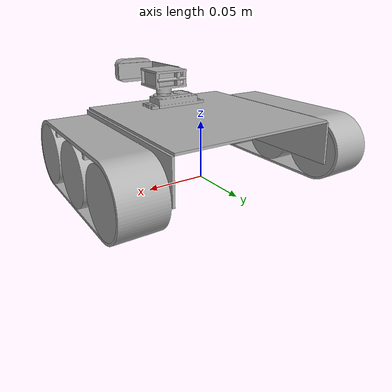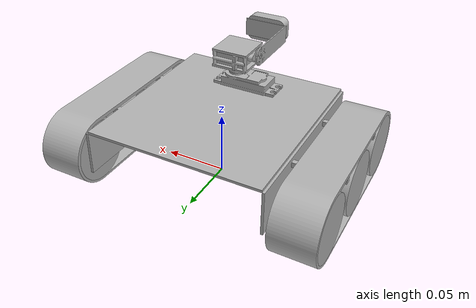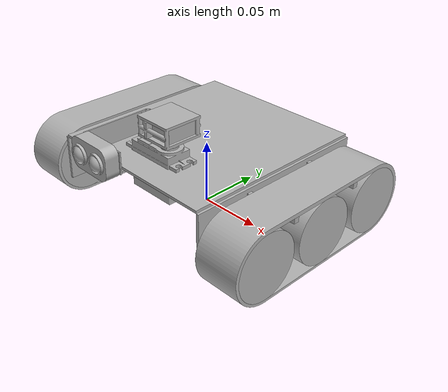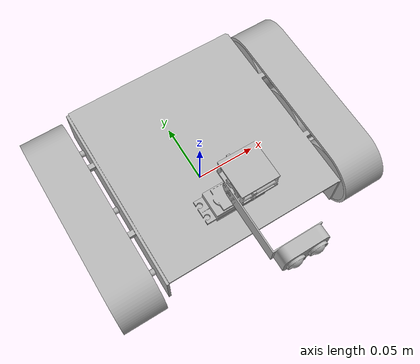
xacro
<?xml version="1.0" ?>
<robot name="slam_robot" xmlns:xacro="http://www.ros.org/wiki/xacro">

<xacro:include filename="$(find slam_robot)/model/materials.xacro" />
<xacro:include filename="$(find slam_robot)/model/slam_robot.trans" />
<xacro:include filename="$(find slam_robot)/model/slam_robot.gazebo" />
<link name="base_link">
  <inertial>
    <origin xyz="-5.540461309722684e-12 0.001115430842048378 0.04947878098697647" rpy="0 0 0"/>
    <mass value="0.5067100319115941"/>
    <inertia ixx="0.000985" iyy="0.001623" izz="0.002495" ixy="-0.0" iyz="-4e-06" ixz="0.0"/>
  </inertial>
  <visual>
    <origin xyz="0 0 0" rpy="0 0 0"/>
    <geometry>
      <mesh filename="file://$(find slam_robot)/meshes/base_link.stl" scale="0.001 0.001 0.001"/>
    </geometry>
    <material name="silver"/>
  </visual>
  <collision>
    <origin xyz="0 0 0" rpy="0 0 0"/>
    <geometry>
      <mesh filename="file://$(find slam_robot)/meshes/base_link.stl" scale="0.001 0.001 0.001"/>
    </geometry>
  </collision>
</link>

<link name="LeftMotor_1">
  <inertial>
    <origin xyz="-0.017499999999999988 8.195639375485619e-10 3.5762788563875603e-10" rpy="0 0 0"/>
    <mass value="0.5394703634836222"/>
    <inertia ixx="0.000169" iyy="0.000139" izz="0.000139" ixy="-0.0" iyz="0.0" ixz="0.0"/>
  </inertial>
  <visual>
    <origin xyz="0.077 -0.055 -0.02701" rpy="0 0 0"/>
    <geometry>
      <mesh filename="file://$(find slam_robot)/meshes/LeftMotor.stl" scale="0.001 0.001 0.001"/>
    </geometry>
    <material name="silver"/>
  </visual>
  <collision>
    <origin xyz="0.077 -0.055 -0.02701" rpy="0 0 0"/>
    <geometry>
      <mesh filename="file://$(find slam_robot)/meshes/LeftMotor.stl" scale="0.001 0.001 0.001"/>
    </geometry>
  </collision>
</link>

<link name="RightMotor_1">
  <inertial>
    <origin xyz="0.017499999999999988 8.195639375485619e-10 3.5762788563875603e-10" rpy="0 0 0"/>
    <mass value="0.5394703634836222"/>
    <inertia ixx="0.000169" iyy="0.000139" izz="0.000139" ixy="0.0" iyz="0.0" ixz="-0.0"/>
  </inertial>
  <visual>
    <origin xyz="-0.077 -0.055 -0.02701" rpy="0 0 0"/>
    <geometry>
      <mesh filename="file://$(find slam_robot)/meshes/RightMotor.stl" scale="0.001 0.001 0.001"/>
    </geometry>
    <material name="silver"/>
  </visual>
  <collision>
    <origin xyz="-0.077 -0.055 -0.02701" rpy="0 0 0"/>
    <geometry>
      <mesh filename="file://$(find slam_robot)/meshes/RightMotor.stl" scale="0.001 0.001 0.001"/>
    </geometry>
  </collision>
</link>

<link name="LeftMiddleWheel_1">
  <inertial>
    <origin xyz="-0.017499999999999988 5.1236508803943863e-17 2.533197436538348e-10" rpy="0 0 0"/>
    <mass value="0.5394703634836222"/>
    <inertia ixx="0.000169" iyy="0.000139" izz="0.000139" ixy="0.0" iyz="-0.0" ixz="0.0"/>
  </inertial>
  <visual>
    <origin xyz="0.077 -0.0 -0.02701" rpy="0 0 0"/>
    <geometry>
      <mesh filename="file://$(find slam_robot)/meshes/LeftMiddleWheel.stl" scale="0.001 0.001 0.001"/>
    </geometry>
    <material name="silver"/>
  </visual>
  <collision>
    <origin xyz="0.077 -0.0 -0.02701" rpy="0 0 0"/>
    <geometry>
      <mesh filename="file://$(find slam_robot)/meshes/LeftMiddleWheel.stl" scale="0.001 0.001 0.001"/>
    </geometry>
  </collision>
</link>

<link name="LeftFrontWheel_1">
  <inertial>
    <origin xyz="-0.017499999999999988 -8.195638750985168e-10 3.278255514271855e-10" rpy="0 0 0"/>
    <mass value="0.5394703634836222"/>
    <inertia ixx="0.000169" iyy="0.000139" izz="0.000139" ixy="-0.0" iyz="-0.0" ixz="0.0"/>
  </inertial>
  <visual>
    <origin xyz="0.077 0.055 -0.027" rpy="0 0 0"/>
    <geometry>
      <mesh filename="file://$(find slam_robot)/meshes/LeftFrontWheel.stl" scale="0.001 0.001 0.001"/>
    </geometry>
    <material name="silver"/>
  </visual>
  <collision>
    <origin xyz="0.077 0.055 -0.027" rpy="0 0 0"/>
    <geometry>
      <mesh filename="file://$(find slam_robot)/meshes/LeftFrontWheel.stl" scale="0.001 0.001 0.001"/>
    </geometry>
  </collision>
</link>

<link name="RightMiddleWheel_1">
  <inertial>
    <origin xyz="0.017499999999999988 5.1236508803943863e-17 2.533197436538348e-10" rpy="0 0 0"/>
    <mass value="0.5394703634836222"/>
    <inertia ixx="0.000169" iyy="0.000139" izz="0.000139" ixy="-0.0" iyz="-0.0" ixz="-0.0"/>
  </inertial>
  <visual>
    <origin xyz="-0.077 -0.0 -0.02701" rpy="0 0 0"/>
    <geometry>
      <mesh filename="file://$(find slam_robot)/meshes/RightMiddleWheel.stl" scale="0.001 0.001 0.001"/>
    </geometry>
    <material name="silver"/>
  </visual>
  <collision>
    <origin xyz="-0.077 -0.0 -0.02701" rpy="0 0 0"/>
    <geometry>
      <mesh filename="file://$(find slam_robot)/meshes/RightMiddleWheel.stl" scale="0.001 0.001 0.001"/>
    </geometry>
  </collision>
</link>

<link name="RightFrontWheel_1">
  <inertial>
    <origin xyz="0.017499999999999988 -8.195638750985168e-10 3.278255514271855e-10" rpy="0 0 0"/>
    <mass value="0.5394703634836222"/>
    <inertia ixx="0.000169" iyy="0.000139" izz="0.000139" ixy="-0.0" iyz="-0.0" ixz="-0.0"/>
  </inertial>
  <visual>
    <origin xyz="-0.077 0.055 -0.027" rpy="0 0 0"/>
    <geometry>
      <mesh filename="file://$(find slam_robot)/meshes/RightFrontWheel.stl" scale="0.001 0.001 0.001"/>
    </geometry>
    <material name="silver"/>
  </visual>
  <collision>
    <origin xyz="-0.077 0.055 -0.027" rpy="0 0 0"/>
    <geometry>
      <mesh filename="file://$(find slam_robot)/meshes/RightFrontWheel.stl" scale="0.001 0.001 0.001"/>
    </geometry>
  </collision>
</link>

<link name="TrackbeltLeft_1">
  <inertial>
    <origin xyz="-0.002500000000000016 -0.030000003577986583 -0.020599598130945508" rpy="0 0 0"/>
    <mass value="0.26401640653239344"/>
    <inertia ixx="0.000879" iyy="0.000166" izz="0.000768" ixy="-0.0" iyz="-0.0" ixz="-0.0"/>
  </inertial>
  <visual>
    <origin xyz="0.092 -0.03 -0.052" rpy="0 0 0"/>
    <geometry>
      <mesh filename="file://$(find slam_robot)/meshes/TrackbeltLeft.stl" scale="0.001 0.001 0.001"/>
    </geometry>
    <material name="silver"/>
  </visual>
  <collision>
    <origin xyz="0.092 -0.03 -0.052" rpy="0 0 0"/>
    <geometry>
      <mesh filename="file://$(find slam_robot)/meshes/TrackbeltLeft.stl" scale="0.001 0.001 0.001"/>
    </geometry>
  </collision>
</link>

<link name="TrackbeltRight_1">
  <inertial>
    <origin xyz="0.0024999999999999883 -0.030000003577986583 -0.020599598130945508" rpy="0 0 0"/>
    <mass value="0.26401640653239344"/>
    <inertia ixx="0.000879" iyy="0.000166" izz="0.000768" ixy="-0.0" iyz="-0.0" ixz="-0.0"/>
  </inertial>
  <visual>
    <origin xyz="-0.092 -0.03 -0.052" rpy="0 0 0"/>
    <geometry>
      <mesh filename="file://$(find slam_robot)/meshes/TrackbeltRight.stl" scale="0.001 0.001 0.001"/>
    </geometry>
    <material name="silver"/>
  </visual>
  <collision>
    <origin xyz="-0.092 -0.03 -0.052" rpy="0 0 0"/>
    <geometry>
      <mesh filename="file://$(find slam_robot)/meshes/TrackbeltRight.stl" scale="0.001 0.001 0.001"/>
    </geometry>
  </collision>
</link>

<link name="MG995_1">
  <inertial>
    <origin xyz="0.00018178353418634105 -0.010000003571498828 -0.008052466740676903" rpy="0 0 0"/>
    <mass value="0.24596364280532737"/>
    <inertia ixx="3.9e-05" iyy="6.5e-05" izz="4.2e-05" ixy="-0.0" iyz="0.0" ixz="-1e-06"/>
  </inertial>
  <visual>
    <origin xyz="-0.0 0.035 -0.056" rpy="0 0 0"/>
    <geometry>
      <mesh filename="file://$(find slam_robot)/meshes/MG995.stl" scale="0.001 0.001 0.001"/>
    </geometry>
    <material name="silver"/>
  </visual>
  <collision>
    <origin xyz="-0.0 0.035 -0.056" rpy="0 0 0"/>
    <geometry>
      <mesh filename="file://$(find slam_robot)/meshes/MG995.stl" scale="0.001 0.001 0.001"/>
    </geometry>
  </collision>
</link>

<link name="PanPart_1">
  <inertial>
    <origin xyz="7.735593309538685e-07 3.372936091554368e-05 0.006081173443687346" rpy="0 0 0"/>
    <mass value="0.0397277316921417"/>
    <inertia ixx="5e-06" iyy="5e-06" izz="6e-06" ixy="-0.0" iyz="-0.0" ixz="-0.0"/>
  </inertial>
  <visual>
    <origin xyz="-0.0101 0.045 -0.0731" rpy="0 0 0"/>
    <geometry>
      <mesh filename="file://$(find slam_robot)/meshes/PanPart.stl" scale="0.001 0.001 0.001"/>
    </geometry>
    <material name="silver"/>
  </visual>
  <collision>
    <origin xyz="-0.0101 0.045 -0.0731" rpy="0 0 0"/>
    <geometry>
      <mesh filename="file://$(find slam_robot)/meshes/PanPart.stl" scale="0.001 0.001 0.001"/>
    </geometry>
  </collision>
</link>

<link name="MG90S_1">
  <inertial>
    <origin xyz="-0.0012642844142995557 -0.0003546384959452545 -0.005750000639991565" rpy="0 0 0"/>
    <mass value="0.05582570440066095"/>
    <inertia ixx="3e-06" iyy="4e-06" izz="6e-06" ixy="-0.0" iyz="-0.0" ixz="-0.0"/>
  </inertial>
  <visual>
    <origin xyz="-0.0101 0.045 -0.0866" rpy="0 0 0"/>
    <geometry>
      <mesh filename="file://$(find slam_robot)/meshes/MG90S.stl" scale="0.001 0.001 0.001"/>
    </geometry>
    <material name="silver"/>
  </visual>
  <collision>
    <origin xyz="-0.0101 0.045 -0.0866" rpy="0 0 0"/>
    <geometry>
      <mesh filename="file://$(find slam_robot)/meshes/MG90S.stl" scale="0.001 0.001 0.001"/>
    </geometry>
  </collision>
</link>

<link name="TiltPart_1">
  <inertial>
    <origin xyz="0.008128464556555534 -0.03307294922540953 -5.502122614162164e-05" rpy="0 0 0"/>
    <mass value="0.011206517805852722"/>
    <inertia ixx="4e-06" iyy="2e-06" izz="5e-06" ixy="1e-06" iyz="-0.0" ixz="0.0"/>
  </inertial>
  <visual>
    <origin xyz="0.0094 0.05075 -0.08085" rpy="0 0 0"/>
    <geometry>
      <mesh filename="file://$(find slam_robot)/meshes/TiltPart.stl" scale="0.001 0.001 0.001"/>
    </geometry>
    <material name="silver"/>
  </visual>
  <collision>
    <origin xyz="0.0094 0.05075 -0.08085" rpy="0 0 0"/>
    <geometry>
      <mesh filename="file://$(find slam_robot)/meshes/TiltPart.stl" scale="0.001 0.001 0.001"/>
    </geometry>
  </collision>
</link>

<link name="TFLunaBenewake_1">
  <inertial>
    <origin xyz="2.2363283794235578e-10 -0.005554543875903067 -1.4306298670718753e-07" rpy="0 0 0"/>
    <mass value="0.0635660946231804"/>
    <inertia ixx="3e-06" iyy="8e-06" izz="7e-06" ixy="0.0" iyz="0.0" ixz="-0.0"/>
  </inertial>
  <visual>
    <origin xyz="-0.0096 0.10075 -0.080778" rpy="0 0 0"/>
    <geometry>
      <mesh filename="file://$(find slam_robot)/meshes/TFLunaBenewake.stl" scale="0.001 0.001 0.001"/>
    </geometry>
    <material name="silver"/>
  </visual>
  <collision>
    <origin xyz="-0.0096 0.10075 -0.080778" rpy="0 0 0"/>
    <geometry>
      <mesh filename="file://$(find slam_robot)/meshes/TFLunaBenewake.stl" scale="0.001 0.001 0.001"/>
    </geometry>
  </collision>
</link>

<joint name="Umdrehung 1" type="continuous">
  <origin xyz="-0.077 0.055 0.02701" rpy="0 0 0"/>
  <parent link="base_link"/>
  <child link="LeftMotor_1"/>
  <axis xyz="-1.0 0.0 0.0"/>
</joint>

<joint name="Umdrehung 2" type="continuous">
  <origin xyz="0.077 0.055 0.02701" rpy="0 0 0"/>
  <parent link="base_link"/>
  <child link="RightMotor_1"/>
  <axis xyz="-1.0 0.0 0.0"/>
</joint>

<joint name="Starr 3" type="fixed">
  <origin xyz="-0.077 0.0 0.02701" rpy="0 0 0"/>
  <parent link="base_link"/>
  <child link="LeftMiddleWheel_1"/>
</joint>

<joint name="Starr 4" type="fixed">
  <origin xyz="-0.077 -0.055 0.027" rpy="0 0 0"/>
  <parent link="base_link"/>
  <child link="LeftFrontWheel_1"/>
</joint>

<joint name="Starr 5" type="fixed">
  <origin xyz="0.077 0.0 0.02701" rpy="0 0 0"/>
  <parent link="base_link"/>
  <child link="RightMiddleWheel_1"/>
</joint>

<joint name="Starr 6" type="fixed">
  <origin xyz="0.077 -0.055 0.027" rpy="0 0 0"/>
  <parent link="base_link"/>
  <child link="RightFrontWheel_1"/>
</joint>

<joint name="Starr 7" type="fixed">
  <origin xyz="-0.092 0.03 0.052" rpy="0 0 0"/>
  <parent link="base_link"/>
  <child link="TrackbeltLeft_1"/>
</joint>

<joint name="Starr 8" type="fixed">
  <origin xyz="0.092 0.03 0.052" rpy="0 0 0"/>
  <parent link="base_link"/>
  <child link="TrackbeltRight_1"/>
</joint>

<joint name="Starr 9" type="fixed">
  <origin xyz="0.0 -0.035 0.056" rpy="0 0 0"/>
  <parent link="base_link"/>
  <child link="MG995_1"/>
</joint>

<joint name="Umdrehung 10" type="revolute">
  <origin xyz="0.0101 -0.01 0.0171" rpy="0 0 0"/>
  <parent link="MG995_1"/>
  <child link="PanPart_1"/>
  <axis xyz="0.0 -0.0 1.0"/>
  <limit upper="0.959931" lower="-0.959931" effort="100" velocity="100"/>
</joint>

<joint name="Starr 11" type="fixed">
  <origin xyz="0.0 0.0 0.0135" rpy="0 0 0"/>
  <parent link="PanPart_1"/>
  <child link="MG90S_1"/>
</joint>

<joint name="Umdrehung 12" type="revolute">
  <origin xyz="-0.0195 -0.00575 -0.00575" rpy="0 0 0"/>
  <parent link="MG90S_1"/>
  <child link="TiltPart_1"/>
  <axis xyz="-1.0 0.0 0.0"/>
  <limit upper="0.698132" lower="-0.523599" effort="100" velocity="100"/>
</joint>

<joint name="Starr 13" type="fixed">
  <origin xyz="0.019 -0.05 -7.2e-05" rpy="0 0 0"/>
  <parent link="TiltPart_1"/>
  <child link="TFLunaBenewake_1"/>
</joint>

</robot>

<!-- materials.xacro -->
<robot name="slam_robot" xmlns:xacro="http://www.ros.org/wiki/xacro" >

<material name="silver">
  <color rgba="0.700 0.700 0.700 1.000"/>
</material>

</robot>

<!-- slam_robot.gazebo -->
<robot name="slam_robot" xmlns:xacro="http://www.ros.org/wiki/xacro" >

<xacro:property name="body_color" value="Gazebo/ Dark Silver" />

<gazebo>
  <plugin name="control" filename="libgazebo_ros_control.so"/>
</gazebo>
<gazebo reference="base_link">
  <material>${body_color}</material>
  <mu1>0.2</mu1>
  <mu2>0.2</mu2>
  <self_collide>true</self_collide>
  <gravity>true</gravity>
</gazebo>

<gazebo reference="LeftMotor_1">
  <material>Gazebo/Blue</material>
  <mu1>0.2</mu1>
  <mu2>0.2</mu2>
  <self_collide>true</self_collide>
</gazebo>

<gazebo reference="RightMotor_1">
  <material>Gazebo/Blue</material>
  <mu1>0.2</mu1>
  <mu2>0.2</mu2>
  <self_collide>true</self_collide>
</gazebo>

<gazebo reference="LeftMiddleWheel_1">
  <material>Gazebo/Blue</material>
  <mu1>0.2</mu1>
  <mu2>0.2</mu2>
  <self_collide>true</self_collide>
</gazebo>

<gazebo reference="LeftFrontWheel_1">
  <material>Gazebo/Blue</material>
  <mu1>0.2</mu1>
  <mu2>0.2</mu2>
  <self_collide>true</self_collide>
</gazebo>

<gazebo reference="RightMiddleWheel_1">
  <material>Gazebo/Blue</material>
  <mu1>0.2</mu1>
  <mu2>0.2</mu2>
  <self_collide>true</self_collide>
</gazebo>

<gazebo reference="RightFrontWheel_1">
  <material>Gazebo/Blue</material>
  <mu1>0.2</mu1>
  <mu2>0.2</mu2>
  <self_collide>true</self_collide>
</gazebo>

<gazebo reference="TrackbeltLeft_1">
  <material>Gazebo/Black</material>
  <mu1>0.2</mu1>
  <mu2>0.2</mu2>
  <self_collide>true</self_collide>
</gazebo>

<gazebo reference="TrackbeltRight_1">
  <material>Gazebo/Black</material>
  <mu1>0.2</mu1>
  <mu2>0.2</mu2>
  <self_collide>true</self_collide>
</gazebo>

<gazebo reference="MG995_1">
  <material>Gazebo/Gray</material>
  <mu1>0.2</mu1>
  <mu2>0.2</mu2>
  <self_collide>true</self_collide>
</gazebo>

<gazebo reference="PanPart_1">
  <material>${body_color}</material>
  <mu1>0.2</mu1>
  <mu2>0.2</mu2>
  <self_collide>true</self_collide>
</gazebo>

<gazebo reference="MG90S_1">
  <material>Gazebo/Gray</material>
  <mu1>0.2</mu1>
  <mu2>0.2</mu2>
  <self_collide>true</self_collide>
</gazebo>

<gazebo reference="TiltPart_1">
  <material>${body_color}</material>
  <mu1>0.2</mu1>
  <mu2>0.2</mu2>
  <self_collide>true</self_collide>
</gazebo>

<gazebo reference="TFLunaBenewake_1">
  <material>Gazebo/Gray</material>
  <mu1>0.2</mu1>
  <mu2>0.2</mu2>
  <self_collide>true</self_collide>
</gazebo>

</robot>
